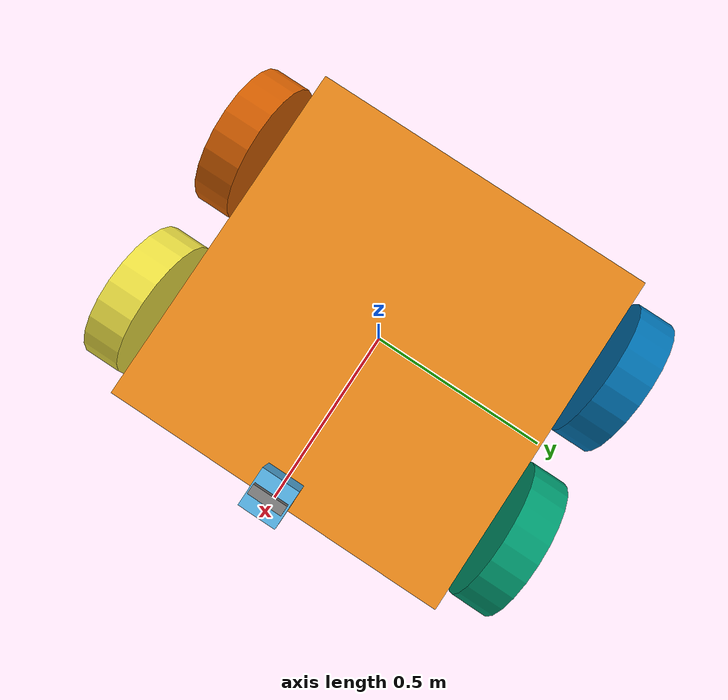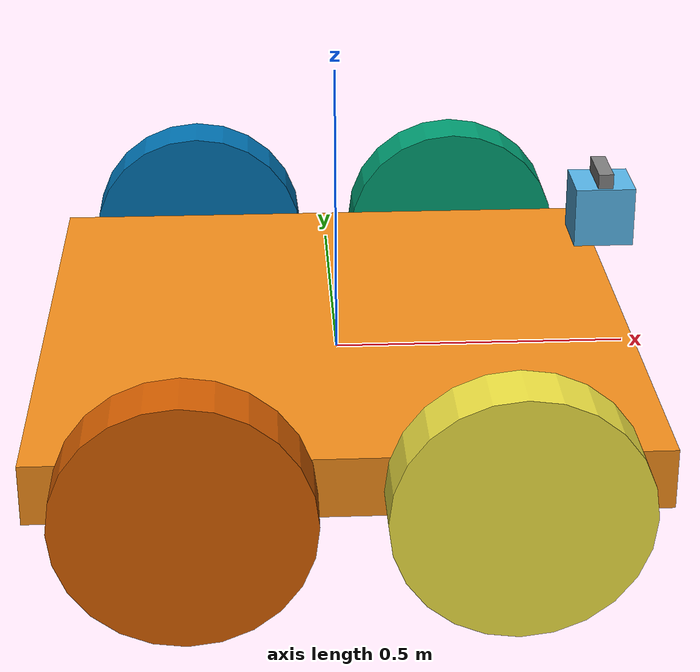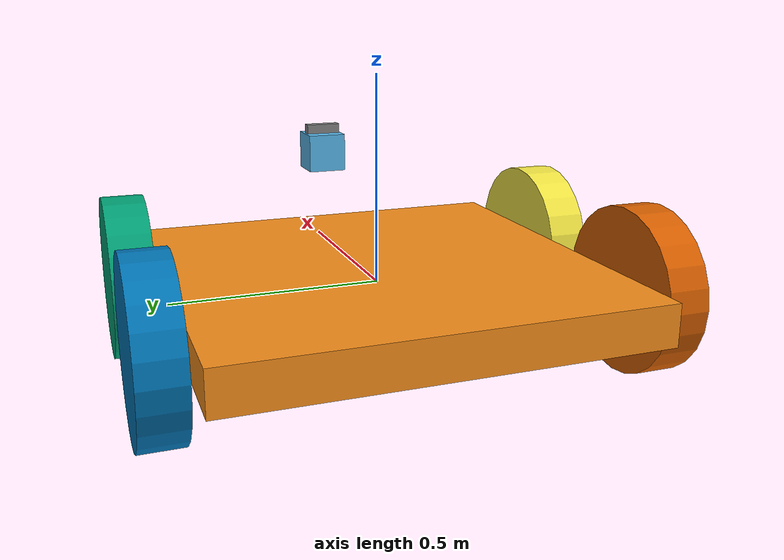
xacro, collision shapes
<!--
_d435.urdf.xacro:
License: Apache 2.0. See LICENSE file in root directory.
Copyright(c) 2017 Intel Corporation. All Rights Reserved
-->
<?xml version='1.0'?>

<robot name="mybot" xmlns:xacro="http://www.ros.org/wiki/xacro">

<xacro:include filename="$(find gazebo_bot)/urdf/rover.gazebo" />
<xacro:include filename="$(find realsense2_description)/urdf/_d435.urdf.xacro"/>

  <link name="chassis">
    <pose>0 0 0.1 0 0 0</pose>
    <inertial>
      <mass value="10.0"/>
      <origin xyz="0.0 0 0.1" rpy=" 0 0 0"/>
      <inertia
          ixx="2.4" ixy="0" ixz="0"
          iyy="2.4" iyz="0"
          izz="2.4"
      />
    </inertial>

    <collision name='collision'>
      <geometry>
        <box size="1.0 1.0 .1"/>
      </geometry>
    </collision>

    <visual name='chassis_visual'>
      <origin xyz="0 0 0" rpy=" 0 0 0"/>
      <geometry>
        <box size="1.0 1.0 .1"/>
      </geometry>
    </visual>

  </link>

<link name="hokuyo">
    <collision>
      <origin xyz="0 0 0" rpy="0 0 0"/>
      <geometry>
         <box size="0.1 0.1 0.1"/>
      </geometry>
    </collision>

    <visual>
      <origin xyz="0 0 0" rpy="0 0 0"/>
      <geometry>
        <mesh filename="package://gazebo_bot/meshes/hokuyo.dae"/>
      </geometry>
    </visual>

    <inertial>
      <mass value="1e-5" />
      <origin xyz="0 0 0" rpy="0 0 0"/>
      <inertia ixx="1e-6" ixy="0" ixz="0" iyy="1e-6" iyz="0" izz="1e-6" />
    </inertial>
</link>

  <link name="left_wheel">
    <collision name="collision">
      <origin xyz="0 0 0" rpy="0 1.5707 1.5707"/>
      <geometry>
        <cylinder radius="0.2" length="0.1"/>
      </geometry>
    </collision>
    <visual name="left_wheel_visual">
      <origin xyz="0 0 0" rpy="0 1.5707 1.5707"/>
      <geometry>
        <cylinder radius="0.2" length="0.1"/>
      </geometry>
    </visual>
    <inertial>
      <origin xyz="0 0 0" rpy="0 1.5707 1.5707"/>
      <mass value="5"/>
      <cylinder_inertia m="5" r="0.2" h="0.1"/>
      <inertia
        ixx="0.1083" ixy="0.0" ixz="0.0"
        iyy="0.1083" iyz="0.0"
        izz="0.1083"/>
    </inertial>
  </link>

  <link name="right_wheel">
    <collision name="collision">
      <origin xyz="0 0 0" rpy="0 1.5707 1.5707"/>
      <geometry>
        <cylinder radius="0.2" length="0.1"/>
      </geometry>
    </collision>
    <visual name="right_wheel_visual">
      <origin xyz="0 0 0" rpy="0 1.5707 1.5707"/>
      <geometry>
        <cylinder radius="0.2" length="0.1"/>
      </geometry>
    </visual>
    <inertial>
      <origin xyz="0 0 0" rpy="0 1.5707 1.5707"/>
      <mass value="5"/>
      <cylinder_inertia m="5" r="0.2" h="0.1"/>
      <inertia
        ixx="0.1083" ixy="0.0" ixz="0.0"
        iyy="0.1083" iyz="0.0"
        izz="0.1083"/>
    </inertial>
  </link>

  <link name="left_fwheel">
    <collision name="collision">
      <origin xyz="0 0 0" rpy="0 1.5707 1.5707"/>
      <geometry>
        <cylinder radius="0.2" length="0.1"/>
      </geometry>
    </collision>
    <visual name="left_wheel_fvisual">
      <origin xyz="0 0 0" rpy="0 1.5707 1.5707"/>
      <geometry>
        <cylinder radius="0.2" length="0.1"/>
      </geometry>
    </visual>
    <inertial>
      <origin xyz="0 0 0" rpy="0 1.5707 1.5707"/>
      <mass value="5"/>
      <cylinder_inertia m="5" r="0.2" h="0.1"/>
      <inertia
        ixx="0.1083" ixy="0.0" ixz="0.0"
        iyy="0.1083" iyz="0.0"
        izz="0.1083"/>
    </inertial>
  </link>

  <link name="right_fwheel">
    <collision name="collision">
      <origin xyz="0 0 0" rpy="0 1.5707 1.5707"/>
      <geometry>
        <cylinder radius="0.2" length="0.1"/>
      </geometry>
    </collision>
    <visual name="right_wheel_fvisual">
      <origin xyz="0 0 0" rpy="0 1.5707 1.5707"/>
      <geometry>
        <cylinder radius="0.2" length="0.1"/>
      </geometry>
    </visual>
    <inertial>
      <origin xyz="0 0 0" rpy="0 1.5707 1.5707"/>
      <mass value="5"/>
      <cylinder_inertia m="5" r="0.2" h="0.1"/>
      <inertia
        ixx="0.1083" ixy="0.0" ixz="0.0"
        iyy="0.1083" iyz="0.0"
        izz="0.1083"/>
    </inertial>
  </link>

  <joint type="continuous" name="left_wheel_hinge">
    <origin xyz="0.25 0.565 0" rpy="0 0 0"/>
    <child link="left_wheel"/>
    <parent link="chassis"/>
    <axis xyz="0 1 0" rpy="0 0 0"/>
    <limit effort="100" velocity="100"/>
    <joint_properties damping="0.0" friction="1.0"/>
  </joint>

  <joint type="continuous" name="right_wheel_hinge">
    <origin xyz="0.25 -0.565 0" rpy="0 0 0"/>
    <child link="right_wheel"/>
    <parent link="chassis"/>
    <axis xyz="0 1 0" rpy="0 0 0"/>
    <limit effort="100" velocity="100"/>
    <joint_properties damping="0.0" friction="1.0"/>
  </joint>

 <joint type="continuous" name="left_wheel_fhinge">
    <origin xyz="-0.25 0.565 0" rpy="0 0 0"/>
    <child link="left_fwheel"/>
    <parent link="chassis"/>
    <axis xyz="0 1 0" rpy="0 0 0"/>
    <limit effort="100" velocity="100"/>
    <joint_properties damping="0.0" friction="1.0"/>
  </joint>

  <joint type="continuous" name="right_wheel_fhinge">
    <origin xyz="-0.25 -0.565 0" rpy="0 0 0"/>
    <child link="right_fwheel"/>
    <parent link="chassis"/>
    <axis xyz="0 1 0" rpy="0 0 0"/>
    <limit effort="100" velocity="100"/>
    <joint_properties damping="0.0" friction="1"/>
  </joint>

<joint name="hokuyo_joint" type="fixed">
        <origin xyz="0.45 0 0.25" rpy="0 0 0" />
        <child link="hokuyo" />
        <parent link="chassis" />
</joint>

<sensor_d435 parent="chassis" name="camera" >
        <origin xyz="0.45 0 0.3" rpy="0 0 0" />
</sensor_d435>

</robot>

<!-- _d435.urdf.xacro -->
<robot name="sensor_d435" xmlns:xacro="http://ros.org/wiki/xacro">
  <!--File includes-->
  <xacro:include filename="$(find gazebo_bot)/urdf/_d435.gazebo.xacro"/>

  <xacro:macro name="sensor_d435" params="name:=camera topics_ns:=camera parent *origin">
    <xacro:property name="M_PI" value="3.1415926535897931" />

    <!-- The following values are approximate, and the camera node
     publishing TF values with actual calibrated camera extrinsic values -->
    <xacro:property name="d435_cam_depth_to_left_ir_offset" value="0.0"/>
    <xacro:property name="d435_cam_depth_to_right_ir_offset" value="-0.050"/>
    <xacro:property name="d435_cam_depth_to_color_offset" value="0.015"/>

    <!-- The following values model the aluminum peripherial case for the
  	D435 camera, with the camera joint represented by the actual
  	peripherial camera tripod mount -->
    <xacro:property name="d435_cam_width" value="0.090"/>
    <xacro:property name="d435_cam_height" value="0.025"/>
    <xacro:property name="d435_cam_depth" value="0.02505"/>
    <xacro:property name="d435_cam_mount_from_center_offset" value="0.0149"/>

    <!-- The following offset is relative the the physical D435 camera peripherial
  	camera tripod mount -->
    <xacro:property name="d435_cam_depth_px" value="${d435_cam_mount_from_center_offset}"/>
    <xacro:property name="d435_cam_depth_py" value="0.0175"/>
    <xacro:property name="d435_cam_depth_pz" value="${d435_cam_height/2}"/>

    <material name="${name}_aluminum">
	  <color rgba="0.5 0.5 0.5 1"/>
    </material>

    <!-- camera body, with origin at bottom screw mount -->
    <joint name="${name}_joint" type="fixed">
      <xacro:insert_block name="origin" />
      <parent link="${parent}"/>
      <child link="${name}_bottom_screw_frame" />
    </joint>
    <link name="${name}_bottom_screw_frame"/>

    <joint name="${name}_link_joint" type="fixed">
      <origin xyz="0 ${d435_cam_depth_py} ${d435_cam_depth_pz}" rpy="0 0 0"/>
      <parent link="${name}_bottom_screw_frame"/>
      <child link="${name}_link" />
    </joint>

    <link name="${name}_link">
      <visual>
      <origin xyz="${d435_cam_mount_from_center_offset} ${-d435_cam_depth_py} 0" rpy="${M_PI/2} 0 ${M_PI/2}"/>
        <geometry>
          <mesh filename="package://realsense2_description/meshes/d435.dae" />
        </geometry>
        <material name="${name}_aluminum"/>
      </visual>
      <collision>
        <origin xyz="0 ${-d435_cam_depth_py} 0" rpy="0 0 0"/>
        <geometry>
        <box size="${d435_cam_depth} ${d435_cam_width} ${d435_cam_height}"/>
        </geometry>
      </collision>
      <inertial>
        <!-- The following are not reliable values, and should not be used for modeling -->
        <mass value="0.564" />
        <origin xyz="0 0 0" />
        <inertia ixx="0.003881243" ixy="0.0" ixz="0.0" iyy="0.000498940" iyz="0.0" izz="0.003879257" />
      </inertial>
    </link>

    <!-- camera depth joints and links -->
    <joint name="${name}_depth_joint" type="fixed">
      <origin xyz="0 0 0" rpy="0 0 0"/>
      <parent link="${name}_link"/>
      <child link="${name}_depth_frame" />
    </joint>
    <link name="${name}_depth_frame"/>

    <joint name="${name}_depth_optical_joint" type="fixed">
      <origin xyz="0 0 0" rpy="${-M_PI/2} 0 ${-M_PI/2}" />
      <parent link="${name}_depth_frame" />
      <child link="${name}_depth_optical_frame" />
    </joint>
    <link name="${name}_depth_optical_frame"/>

    <!-- camera left IR joints and links -->
    <joint name="${name}_left_ir_joint" type="fixed">
      <origin xyz="0 ${d435_cam_depth_to_left_ir_offset} 0" rpy="0 0 0" />
      <parent link="${name}_depth_frame" />
      <child link="${name}_left_ir_frame" />
    </joint>
    <link name="${name}_left_ir_frame"/>

    <joint name="${name}_left_ir_optical_joint" type="fixed">
      <origin xyz="0 0 0" rpy="${-M_PI/2} 0 ${-M_PI/2}" />
      <parent link="${name}_left_ir_frame" />
      <child link="${name}_left_ir_optical_frame" />
    </joint>
    <link name="${name}_left_ir_optical_frame"/>

    <!-- camera right IR joints and links -->
    <joint name="${name}_right_ir_joint" type="fixed">
      <origin xyz="0 ${d435_cam_depth_to_right_ir_offset} 0" rpy="0 0 0" />
      <parent link="${name}_depth_frame" />
      <child link="${name}_right_ir_frame" />
    </joint>
    <link name="${name}_right_ir_frame"/>

    <joint name="${name}_right_ir_optical_joint" type="fixed">
      <origin xyz="0 0 0" rpy="${-M_PI/2} 0 ${-M_PI/2}" />
      <parent link="${name}_right_ir_frame" />
      <child link="${name}_right_ir_optical_frame" />
    </joint>
    <link name="${name}_right_ir_optical_frame"/>

    <!-- camera color joints and links -->
    <joint name="${name}_color_joint" type="fixed">
      <origin xyz="0 ${d435_cam_depth_to_color_offset} 0" rpy="0 0 0" />
      <parent link="${name}_depth_frame" />
      <child link="${name}_color_frame" />
    </joint>
    <link name="${name}_color_frame"/>

    <joint name="${name}_color_optical_joint" type="fixed">
      <origin xyz="0 0 0" rpy="${-M_PI/2} 0 ${-M_PI/2}" />
      <parent link="${name}_color_frame" />
      <child link="${name}_color_optical_frame" />
    </joint>
    <link name="${name}_color_optical_frame"/>

    <!-- Realsense Gazebo Plugin -->
    <xacro:gazebo_d435 camera_name="${name}" reference_link="${name}_link" topics_ns="${topics_ns}" depth_optical_frame="${name}_depth_optical_frame" color_optical_frame="${name}_color_optical_frame" infrared1_optical_frame="${name}_left_ir_optical_frame" infrared2_optical_frame="${name}_right_ir_optical_frame"/>

  </xacro:macro>
</robot>
